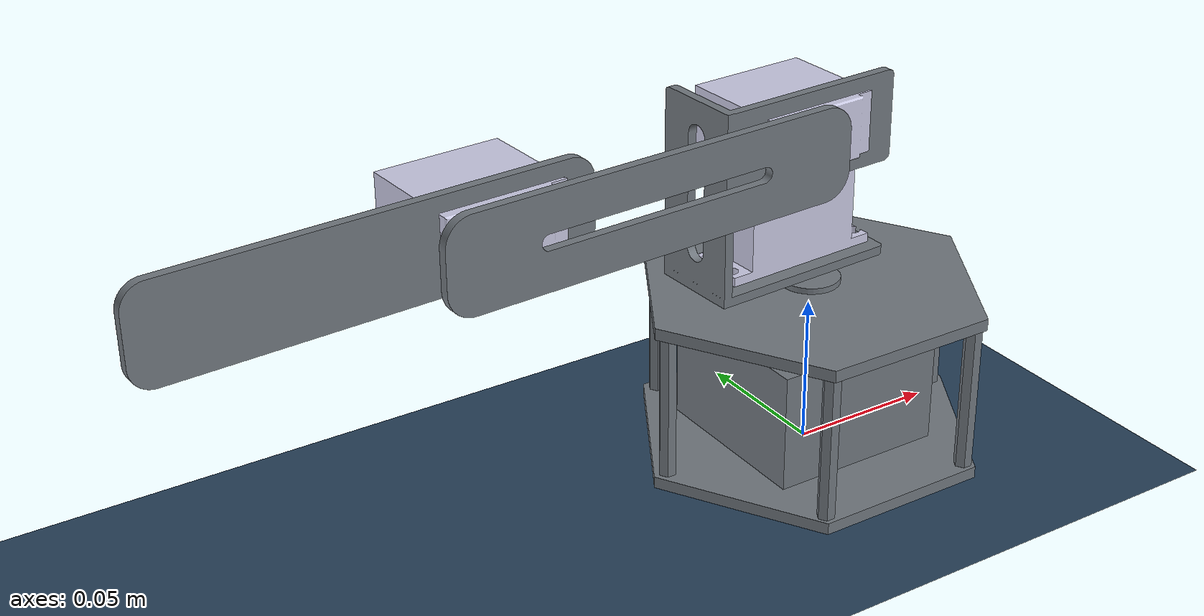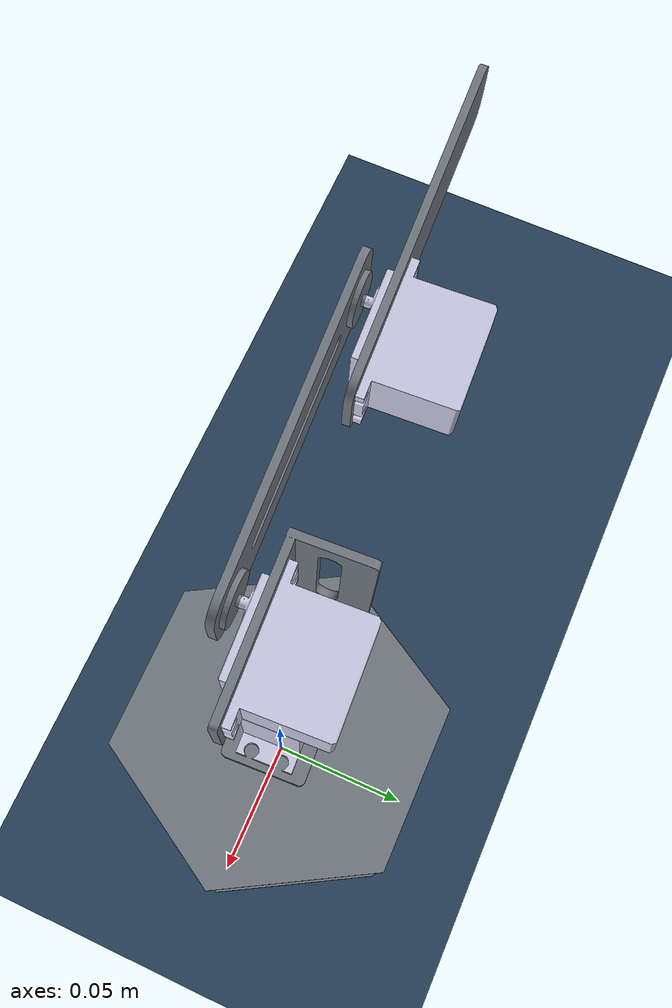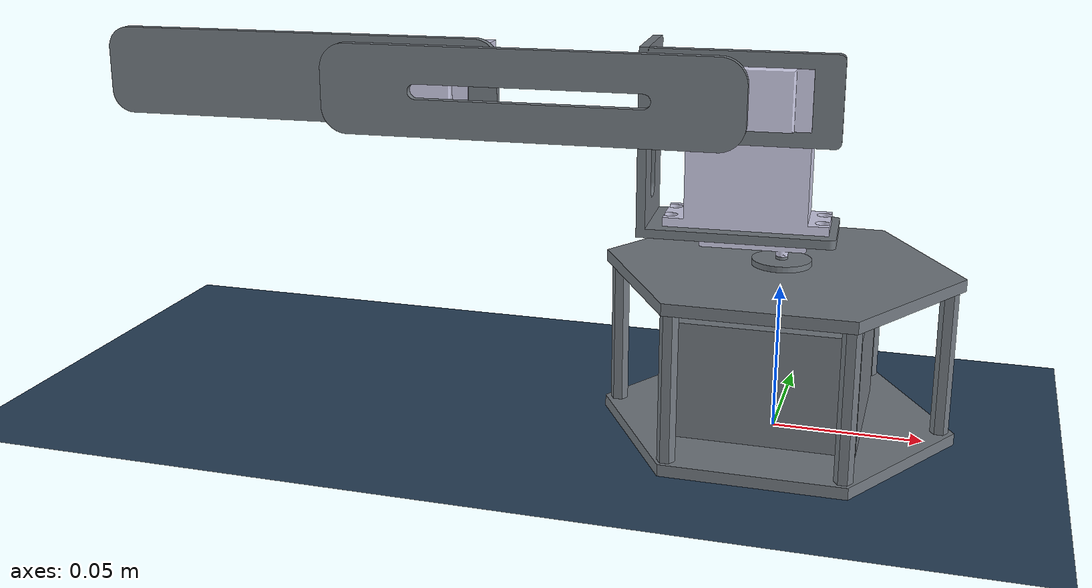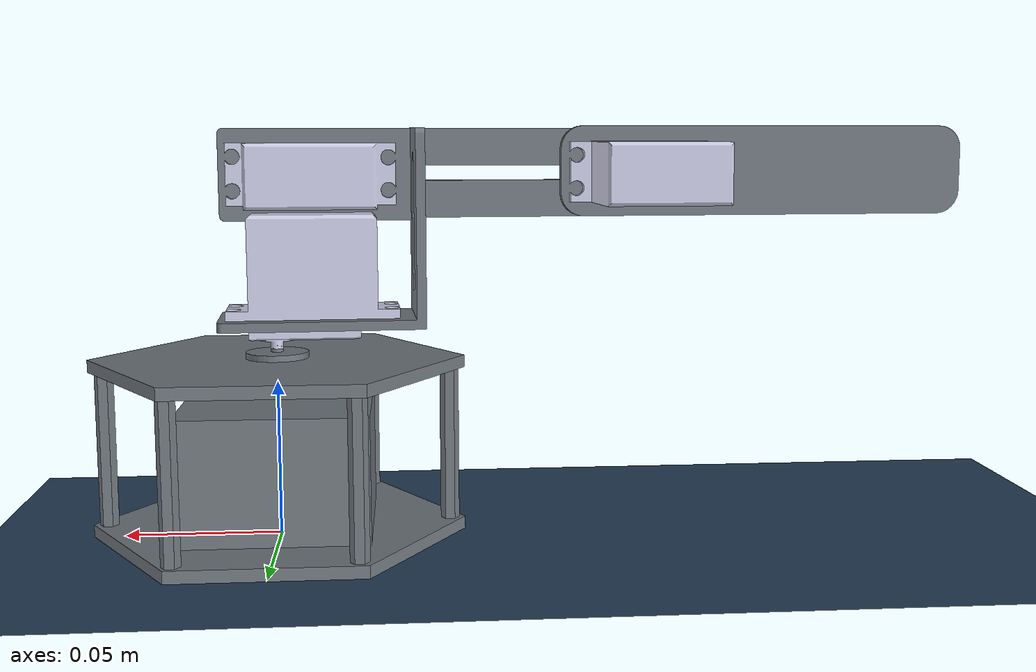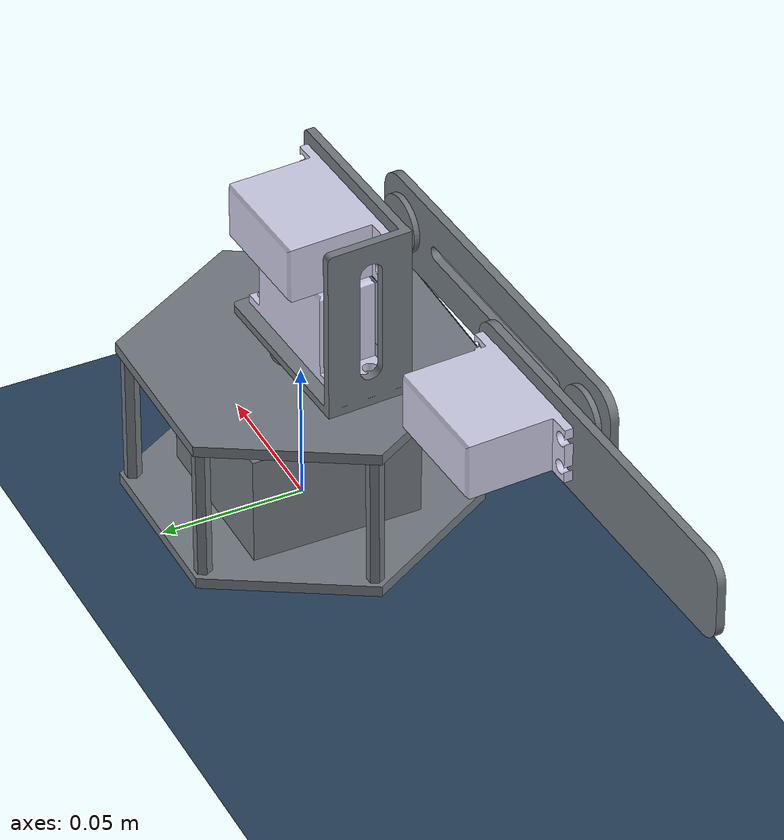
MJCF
<?xml version='1.0' encoding='utf-8'?>
<mujoco>
  <option integrator="implicitfast" timestep="0.002" solver="Newton" iterations="200" tolerance="1e-10" />
  <compiler meshdir="meshes" autolimits="true" inertiafromgeom="true" angle="radian" />
  <default>
    <joint damping="10.0" armature="1.0" />
    <geom conaffinity="0" condim="3" friction="1 0.5 0.5" margin="0" />
  </default>
  <asset>
    <texture type="skybox" builtin="gradient" rgb1="0.3 0.5 0.7" rgb2="0 0 0" width="512" height="3072" />
    <texture type="2d" name="groundplane" builtin="checker" mark="edge" rgb1="0.2 0.3 0.4" rgb2="0.1 0.2 0.3" markrgb="0.8 0.8 0.8" width="300" height="300" />
    <material name="groundplane" texture="groundplane" texuniform="true" texrepeat="5 5" reflectance="0.1" />
    <!--Part Meshes-->
    <mesh name="Base" file="Base.obj" scale="0.001 0.001 0.001" />
    <material name="Base" rgba="0.4470588266849518 0.4745098054409027 0.501960813999176 1.0" shininess="0.8999999761581421" />
    <!--Part Meshes-->
    <mesh name="Pillers_1" file="Pillers_1.obj" scale="0.001 0.001 0.001" />
    <material name="Pillers_1" rgba="0.4470588266849518 0.4745098054409027 0.501960813999176 1.0" shininess="0.8999999761581421" />
    <!--Part Meshes-->
    <mesh name="Pillers_002" file="Pillers_002.obj" scale="0.001 0.001 0.001" />
    <material name="Pillers_002" rgba="0.4470588266849518 0.4745098054409027 0.501960813999176 1.0" shininess="0.8999999761581421" />
    <!--Part Meshes-->
    <mesh name="Pillers_003" file="Pillers_003.obj" scale="0.001 0.001 0.001" />
    <material name="Pillers_003" rgba="0.4470588266849518 0.4745098054409027 0.501960813999176 1.0" shininess="0.8999999761581421" />
    <!--Part Meshes-->
    <mesh name="Pillers_004" file="Pillers_004.obj" scale="0.001 0.001 0.001" />
    <material name="Pillers_004" rgba="0.4470588266849518 0.4745098054409027 0.501960813999176 1.0" shininess="0.8999999761581421" />
    <!--Part Meshes-->
    <mesh name="Pillers_005" file="Pillers_005.obj" scale="0.001 0.001 0.001" />
    <material name="Pillers_005" rgba="0.4470588266849518 0.4745098054409027 0.501960813999176 1.0" shininess="0.8999999761581421" />
    <!--Part Meshes-->
    <mesh name="Pillers_006" file="Pillers_006.obj" scale="0.001 0.001 0.001" />
    <material name="Pillers_006" rgba="0.4470588266849518 0.4745098054409027 0.501960813999176 1.0" shininess="0.8999999761581421" />
    <!--Part Meshes-->
    <mesh name="Base2" file="Base2.obj" scale="0.001 0.001 0.001" />
    <material name="Base2" rgba="0.4470588266849518 0.4745098054409027 0.501960813999176 1.0" shininess="0.8999999761581421" />
    <!--Part Meshes-->
    <mesh name="head" file="head.obj" scale="0.001 0.001 0.001" />
    <material name="head" rgba="0.4470588266849518 0.4745098054409027 0.501960813999176 1.0" shininess="0.8999999761581421" />
    <!--Part Meshes-->
    <mesh name="MG996R" file="MG996R.obj" scale="0.001 0.001 0.001" />
    <material name="MG996R" rgba="0.800000011920929 0.800000011920929 0.9019607901573181 1.0" shininess="0.8999999761581421" />
    <!--Part Meshes-->
    <mesh name="Bottom_frame" file="Bottom_frame.obj" scale="0.001 0.001 0.001" />
    <material name="Bottom_frame" rgba="0.4470588266849518 0.4745098054409027 0.501960813999176 1.0" shininess="0.8999999761581421" />
    <!--Part Meshes-->
    <mesh name="MG996R001" file="MG996R001.obj" scale="0.001 0.001 0.001" />
    <material name="MG996R001" rgba="0.800000011920929 0.800000011920929 0.9019607901573181 1.0" shininess="0.8999999761581421" />
    <!--Part Meshes-->
    <mesh name="head001" file="head001.obj" scale="0.001 0.001 0.001" />
    <material name="head001" rgba="0.4470588266849518 0.4745098054409027 0.501960813999176 1.0" shininess="0.8999999761581421" />
    <!--Part Meshes-->
    <mesh name="mid_frame" file="mid_frame.obj" scale="0.001 0.001 0.001" />
    <material name="mid_frame" rgba="0.4470588266849518 0.4745098054409027 0.501960813999176 1.0" shininess="0.8999999761581421" />
    <!--Part Meshes-->
    <mesh name="head002" file="head002.obj" scale="0.001 0.001 0.001" />
    <material name="head002" rgba="0.4470588266849518 0.4745098054409027 0.501960813999176 1.0" shininess="0.8999999761581421" />
    <!--Part Meshes-->
    <mesh name="MG996R003" file="MG996R003.obj" scale="0.001 0.001 0.001" />
    <material name="MG996R003" rgba="0.800000011920929 0.800000011920929 0.9019607901573181 1.0" shininess="0.8999999761581421" />
    <!--Part Meshes-->
    <mesh name="end_frane" file="end_frane.obj" scale="0.001 0.001 0.001" />
    <material name="end_frane" rgba="0.4470588266849518 0.4745098054409027 0.501960813999176 1.0" shininess="0.8999999761581421" />
  </asset>
  <worldbody>
    <!--Lighting and floor-->
    <light diffuse=".8 .8 .8" pos="0 0 4" dir="0 0 -1" />
    <light diffuse=".6 .6 .6" pos="4 4 4" dir="-1 -1 -1" />
    <geom name="floor" pos="0 0 -0.001" size="0 0 1" type="plane" material="groundplane" />
    <!--Assembly-->
    <body name="Base" pos="0 0 0" quat="1.0 0.0 0.0 0.0">
      <geom type="mesh" name="Base geom" mesh="Base" material="Base" contype="0" conaffinity="0" />
      <site name="Base site" pos="0.0 0.0 0.0" quat="0.0 0.0 0.0 1.0" rgba="0 0 0 0" />
      <body name="Pillers_1" pos="0 0 0" quat="1.0 0.0 0.0 0.0">
        <geom type="mesh" name="Pillers_1 geom" mesh="Pillers_1" material="Pillers_1" contype="0" conaffinity="0" />
        <site name="Pillers_1 site" pos="-0.0012305750000000295 -0.0007839712270663029 0.004" quat="0.0 0.0 0.0 1.0" rgba="0 0 0 0" />
        <body name="Base2" pos="0 0 0" quat="1.0 0.0 0.0 0.0">
          <geom type="mesh" name="Base2 geom" mesh="Base2" material="Base2" contype="0" conaffinity="0" />
          <site name="Base2 site" pos="-1.5644350770482532e-18 -1.0812438898963642e-18 0.054" quat="0.0 0.0 0.0 1.0" rgba="0 0 0 0" />
          <body name="head" pos="0 0 0" quat="1.0 0.0 0.0 0.0">
            <geom type="mesh" name="head geom" mesh="head" material="head" contype="0" conaffinity="0" />
            <site name="head site" pos="-2.507320957864875e-18 -2.6252461100327565e-18 0.06" quat="1.0 0.0 0.0 0.0" rgba="0 0 0 0" />
            <body name="MG996R" pos="0 0 0" quat="1.0 0.0 0.0 0.0">
              <geom type="mesh" name="MG996R geom" mesh="MG996R" material="MG996R" contype="0" conaffinity="0" />
              <site name="MG996R site" pos="-0.03264698490452287 0.008580666868318383 0.104" quat="0.9996316637929635 0.027139210425352868 0.0 0.0" rgba="0 0 0 0" />
              <joint type="hinge" name="Revolute" pos="0.0 -5.3290705182007515e-18 0.064" axis="0.0 0.0 -1.0" range="-1.5707963267948966 1.5707963267948966" />
              <body name="Bottom_frame" pos="0 0 0" quat="1.0 0.0 0.0 0.0">
                <geom type="mesh" name="Bottom_frame geom" mesh="Bottom_frame" material="Bottom_frame" contype="0" conaffinity="0" />
                <site name="Bottom_frame site" pos="0.01702433610152804 0.016292123211765788 0.06827547799999999" quat="0.0 0.0 0.9996316637929635 -0.027139210425352757" rgba="0 0 0 0" />
                <body name="MG996R001" pos="0 0 0" quat="1.0 0.0 0.0 0.0">
                  <geom type="mesh" name="MG996R001 geom" mesh="MG996R001" material="MG996R001" contype="0" conaffinity="0" />
                  <site name="MG996R001 site" pos="0.0072750250418979956 0.021571213405982805 0.12629940252939048" quat="-0.019190319727815645 0.7068463281567956 -0.7068463281567955 0.019190319727815486" rgba="0 0 0 0" />
                  <body name="head001" pos="0 0 0" quat="1.0 0.0 0.0 0.0">
                    <geom type="mesh" name="head001 geom" mesh="head001" material="head001" contype="0" conaffinity="0" />
                    <site name="head001 site" pos="-0.022423589378130264 -0.024107474794893682 0.1159600015293905" quat="-0.01919031972781569 0.7068463281567955 -0.7068463281567955 0.01919031972781542" rgba="0 0 0 0" />
                    <joint type="hinge" name="Revolute001" pos="-0.022640623090702444 -0.02011336708883378 0.1159600015293905" axis="0.05425842814304537 -0.9985269265149769 0.0" range="-0.5235987755982988 2.6179938779914944" />
                    <body name="mid_frame" pos="0 0 0" quat="1.0 0.0 0.0 0.0">
                      <geom type="mesh" name="mid_frame geom" mesh="mid_frame" material="mid_frame" contype="0" conaffinity="0" />
                      <site name="mid_frame site" pos="-0.009520169159932016 -0.025409273140811272 0.1311462225293905" quat="-0.019190319727815697 0.7068463281567955 -0.7068463281567955 0.019190319727815423" rgba="0 0 0 0" />
                      <body name="head002" pos="0 0 0" quat="1.0 0.0 0.0 0.0">
                        <geom type="mesh" name="head002 geom" mesh="head002" material="head002" contype="0" conaffinity="0" />
                        <site name="head002 site" pos="-0.13463049851337275 -0.030204626864409216 0.11633244352939054" quat="-0.01919031972781569 0.7068463281567955 -0.7068463281567955 0.01919031972781542" rgba="0 0 0 0" />
                        <body name="MG996R003" pos="0 0 0" quat="1.0 0.0 0.0 0.0">
                          <geom type="mesh" name="MG996R003 geom" mesh="MG996R003" material="MG996R003" contype="0" conaffinity="0" />
                          <site name="MG996R003 site" pos="-0.10493188409334453 0.015474061336467223 0.12667184452939054" quat="-0.01919031972781579 0.7068463281567955 -0.7068463281567955 0.01919031972781532" rgba="0 0 0 0" />
                          <joint type="hinge" name="Revolute002" pos="-0.13468475694151583 -0.02920609993789425 0.11633244352939053" axis="0.05425842814304537 -0.9985269265149769 0.0" range="-1.5707963267948966 1.5707963267948966" />
                          <body name="end_frane" pos="0 0 0" quat="1.0 0.0 0.0 0.0">
                            <geom type="mesh" name="end_frane geom" mesh="end_frane" material="end_frane" contype="0" conaffinity="0" />
                            <site name="end_frane site" pos="-0.09332329450369407 -0.01967237011570599 0.10193266130124616" quat="-0.019190319727815507 0.7068463281567955 0.7068463281567955 -0.01919031972781577" rgba="0 0 0 0" />
                          </body>
                        </body>
                      </body>
                    </body>
                  </body>
                </body>
              </body>
            </body>
          </body>
        </body>
      </body>
      <body name="Pillers_002" pos="0 0 0" quat="1.0 0.0 0.0 0.0">
        <geom type="mesh" name="Pillers_002 geom" mesh="Pillers_002" material="Pillers_002" contype="0" conaffinity="0" />
        <site name="Pillers_002 site" pos="0.054769424999999955 -0.0007839712270663383 0.004" quat="0.0 0.0 0.0 1.0" rgba="0 0 0 0" />
      </body>
      <body name="Pillers_003" pos="0 0 0" quat="1.0 0.0 0.0 0.0">
        <geom type="mesh" name="Pillers_003 geom" mesh="Pillers_003" material="Pillers_003" contype="0" conaffinity="0" />
        <site name="Pillers_003 site" pos="-0.028230574999999997 0.04717755300000001 0.004" quat="0.0 0.0 0.0 1.0" rgba="0 0 0 0" />
      </body>
      <body name="Pillers_004" pos="0 0 0" quat="1.0 0.0 0.0 0.0">
        <geom type="mesh" name="Pillers_004 geom" mesh="Pillers_004" material="Pillers_004" contype="0" conaffinity="0" />
        <site name="Pillers_004 site" pos="0.08176942499999999 0.047177553000000004 0.004" quat="0.0 0.0 0.0 1.0" rgba="0 0 0 0" />
      </body>
      <body name="Pillers_005" pos="0 0 0" quat="1.0 0.0 0.0 0.0">
        <geom type="mesh" name="Pillers_005 geom" mesh="Pillers_005" material="Pillers_005" contype="0" conaffinity="0" />
        <site name="Pillers_005 site" pos="-0.00023057499999999464 0.09513907722706633 0.004" quat="0.0 0.0 0.0 1.0" rgba="0 0 0 0" />
      </body>
      <body name="Pillers_006" pos="0 0 0" quat="1.0 0.0 0.0 0.0">
        <geom type="mesh" name="Pillers_006 geom" mesh="Pillers_006" material="Pillers_006" contype="0" conaffinity="0" />
        <site name="Pillers_006 site" pos="0.054769425000000004 0.09513907722706631 0.004" quat="0.0 0.0 0.0 1.0" rgba="0 0 0 0" />
      </body>
    </body>
  </worldbody>
  <contact />
  <equality />
  <tendon />
  <actuator>
    <position name="Revolute" joint="Revolute" kp="100" ctrlrange="-1.5707963267948966 1.5707963267948966" />
    <position name="Revolute001" joint="Revolute001" kp="100" ctrlrange="-2.13 0.827" />
    <position name="Revolute002" joint="Revolute002" kp="100" ctrlrange="-1.05 2.09" />
  </actuator>
  <sensor>
    <jointpos name="Revolute_pos" joint="Revolute" />
    <jointpos name="Revolute001_pos" joint="Revolute001" />
    <jointpos name="Revolute002_pos" joint="Revolute002" />
  </sensor>
</mujoco>
